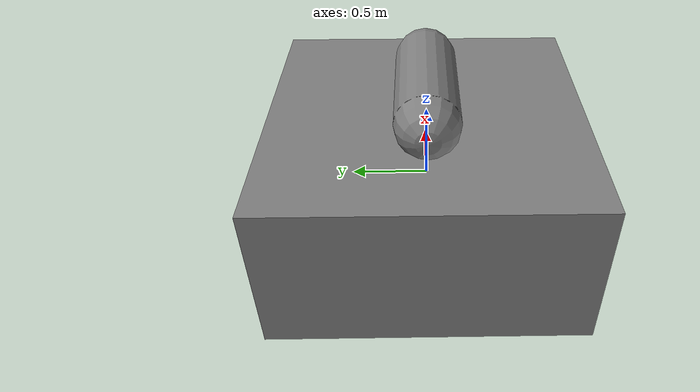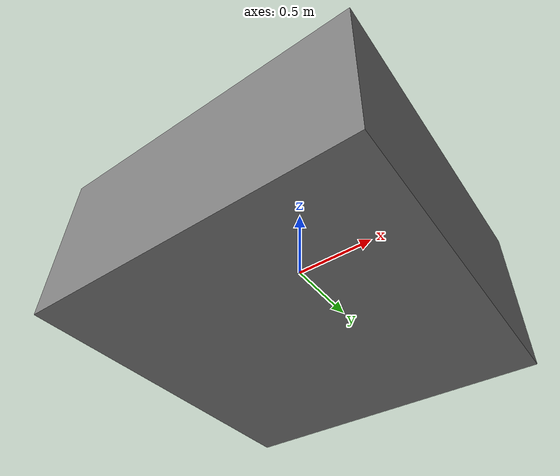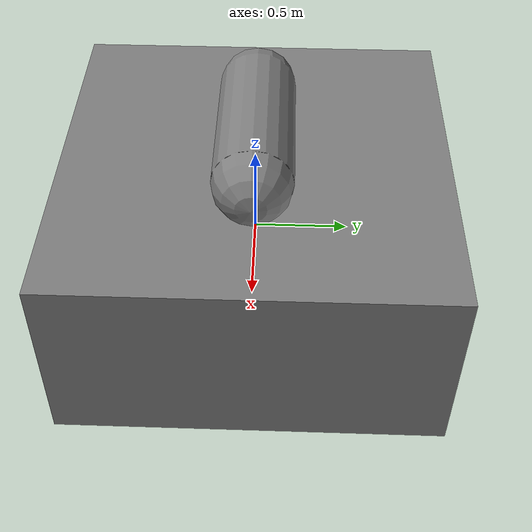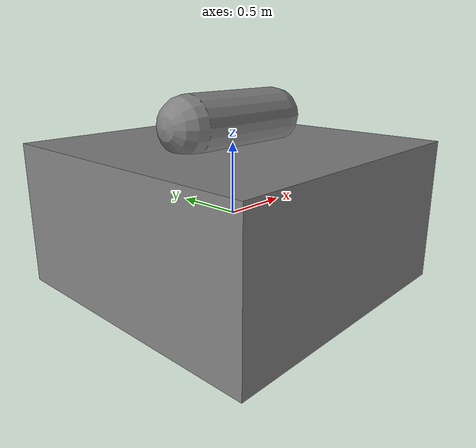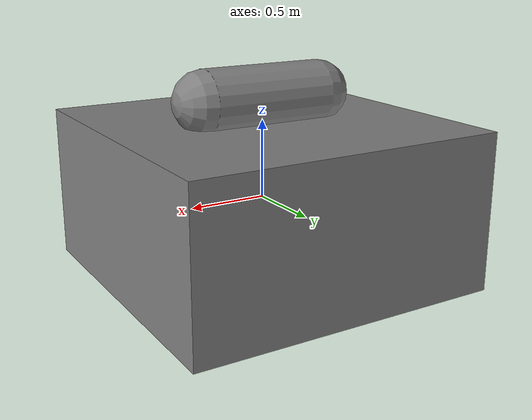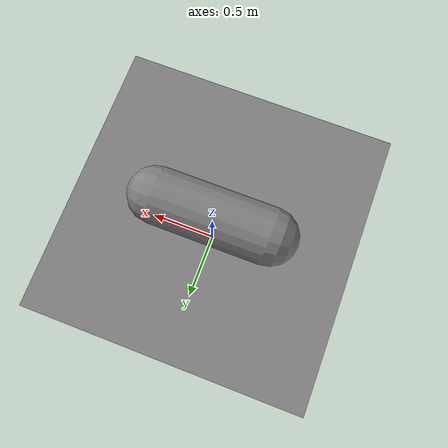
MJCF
<mujoco model="cap_box_face_2">
            <option gravity="0 0 0" timestep="0.001"/>
            <worldbody>
                <body name="box" pos="0 0 0">
                    <joint type="free"/>
                    <geom type="box" size="1.0 1.0 0.5"/>
                </body>
                <body name="cap" pos="0 0 0.65">
                    <joint type="free"/>
                    <geom type="capsule" size="0.2 0.4" euler="0 90 0"/>
                </body>
            </worldbody>
        </mujoco>
